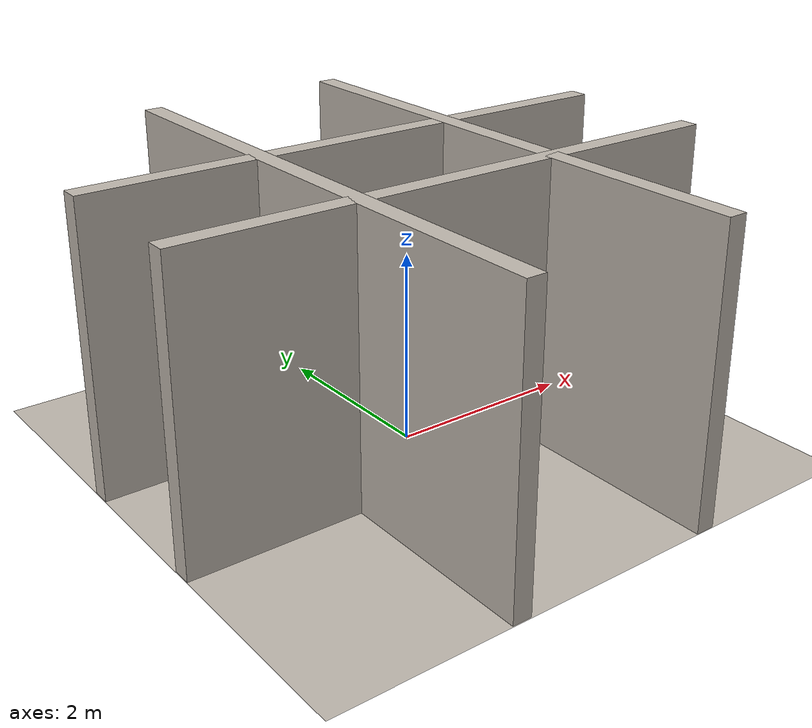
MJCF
<mujoco model="table_arena">
  <asset>
    <texture builtin="gradient" height="256" rgb1=".9 .9 1." rgb2=".2 .3 .4" type="skybox" width="256"/>
    <texture file="../textures/clay.png" type="2d" name="texplane"/>
    <material name="floorplane" reflectance="0.01" shininess="0.0" specular="0.0" texrepeat="2 2" texture="texplane" texuniform="true"/>
    <!-- ceramic table texture and material-->
    <texture file="../textures/blue-wood.png" type="cube" name="tex-ceramic"/>
    <material name="table_ceramic" reflectance="0.0" shininess="0.0" specular="0.2" texrepeat="1 1" texture="tex-ceramic" />
    <!-- steel legs -->
    <texture file="../textures/steel-brushed.png" type="cube" name="tex-steel-brushed"/>
    <material name="table_legs_metal" reflectance="0.8" shininess="0.8" texrepeat="1 1" texture="tex-steel-brushed" />
    <!-- plaster walls -->
    <texture file="../textures/glass.png" type="2d" name="tex-light-gray-plaster"/>
    <material name="walls_mat" reflectance="0.0" shininess="0.1" specular="0.1" texrepeat="3 3" texture="tex-light-gray-plaster" texuniform="true" />
    <!-- added table texture and material for domain randomization -->
    <texture  name="textable" builtin="flat" height="512" width="512" rgb1="0.5 0.5 0.5" rgb2="0.5 0.5 0.5"/>
    <material name="table_mat" texture="textable" />

  </asset>
  <worldbody>
    <!-- Floor -->
    <geom condim="3" group="1" material="floorplane" name="floor" pos="0 0 0" size="3 3 .125" type="plane"/>
    <!-- Walls (visual only) -->
    <geom name="wall_rear"  pos="-1.1 0 1.5" size="0.1 3 1.5" type="box" conaffinity="0" contype="0" group="1" material="walls_mat"/>
<geom name="wall_front" pos="1.1 0 1.5"  size="0.1 3 1.5" type="box" conaffinity="0" contype="0" group="1" material="walls_mat"/>

<geom name="wall_left"  pos="0 0.8 1.5"  size="3 0.1 1.5" type="box" conaffinity="0" contype="0" group="1" material="walls_mat"/>
<geom name="wall_right" pos="0 -0.8 1.5" size="3 0.1 1.5" type="box" conaffinity="0" contype="0" group="1" material="walls_mat"/>
    <!-- Table body -->
    <body name="table" pos="0 0 0.4">
      <geom pos="0 0 0" size="0.4 0.4 0.4" type="box" group="0" name="table_collision" friction="1 0.005 0.0001"/>
      <geom pos="0 0 0" size="0.4 0.4 0.4" type="box" conaffinity="0" contype="0" group="1" name="table_visual" material="table_ceramic"/>
      <site pos="0 0 0.4" name="table_top" size="0.001 0.001 0.001" rgba="0 0 0 0"/>
      <!-- Legs (visual only) -->
      <geom pos="0 0 0" size="0.05 0.1" type="cylinder" conaffinity="0" contype="0" group="1" name="table_leg1_visual" material="table_legs_metal"/>
      <geom pos="0 0 0" size="0.05 0.1" type="cylinder" conaffinity="0" contype="0" group="1" name="table_leg2_visual" material="table_legs_metal"/>
      <geom pos="0 0 0" size="0.05 0.1" type="cylinder" conaffinity="0" contype="0" group="1" name="table_leg3_visual" material="table_legs_metal"/>
      <geom pos="0 0 0" size="0.05 0.1" type="cylinder" conaffinity="0" contype="0" group="1" name="table_leg4_visual" material="table_legs_metal"/>
    </body>
    <light pos="1.0 1.0 1.5" dir="-0.2 -0.2 -1" specular="0.3 0.3 0.3" directional="true" castshadow="false"/>
    <!-- front view -->
    <camera mode="fixed" name="frontview" pos="1.6 0 1.45" quat="0.56 0.43 0.43 0.56"/>
    <!-- bird view -->
    <camera mode="fixed" name="birdview" pos="-0.2 0 3.0" quat="0.7071 0 0 0.7071"/>
    <!-- agent view -->
    <camera mode="fixed" name="agentview" pos="0.5 0 1.35" quat="0.653 0.271 0.271 0.653"/>
    <!-- side view -->
    <camera mode="fixed" name="sideview" pos="-0.05651774593317116 1.2761224129427358 1.4879572214102434" quat="0.009905065491771751 0.006877963156909582 0.5912228352893879 0.806418094001364" />
    <camera mode="fixed" name="external_cam" pos="0.532163 0.417314 1.471426" quat="0.3989202773792646 0.14863408710869164 0.4617862922481059 0.7745909135954389" fovy="42.47"/>
  </worldbody>
</mujoco>
